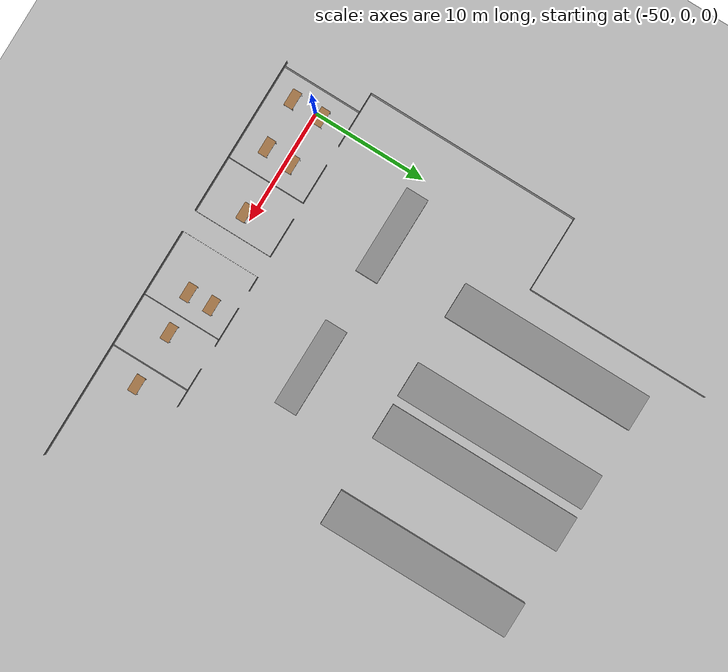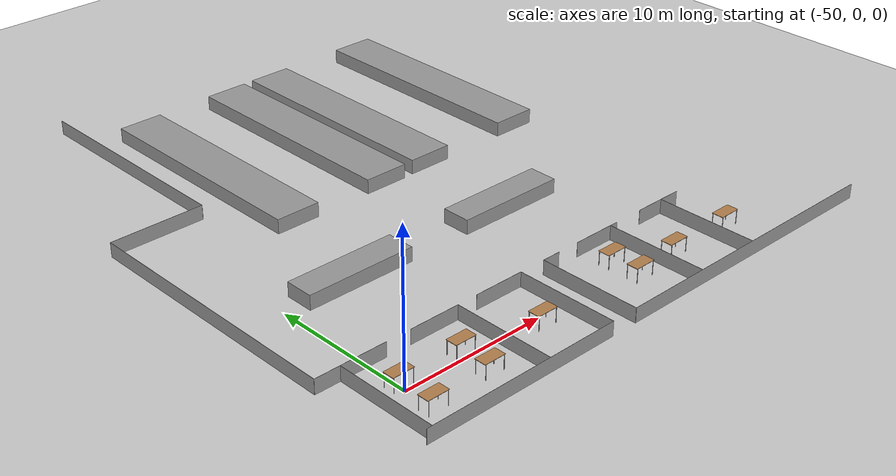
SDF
<sdf version="1.6">
 <world name="default">
  <model name="ground_plane">
   <static>1</static>
   <link name="link">
    <collision name="collision">
     <geometry><plane><normal>0 0 1</normal><size>100 100</size></plane></geometry>
     <surface>
      <contact><collide_bitmask>65535</collide_bitmask></contact>
      <friction><ode><mu>100</mu><mu2>50</mu2></ode></friction>
     </surface>
    </collision>
    <visual name="visual">
     <cast_shadows>0</cast_shadows>
     <geometry><plane><normal>0 0 1</normal><size>100 100</size></plane></geometry>
     <material>
      <script><uri>file://media/materials/scripts/gazebo.material</uri><name>Gazebo/Grey</name></script>
     </material>
    </visual>
   </link>
  </model>
  <model name="unit_box_clone_clone_clone_0_clone">
   <static>1</static>
   <pose>-51.129 2.94542 0.5 0 -0 0</pose>
   <link name="link">
    <inertial>
     <mass>1</mass>
     <inertia>
      <ixx>0.166667</ixx>
      <ixy>0</ixy>
      <ixz>0</ixz>
      <iyy>0.166667</iyy>
      <iyz>0</iyz>
      <izz>0.166667</izz>
     </inertia>
    </inertial>
    <collision name="collision"><geometry><box><size>4.94814 0.014042 1</size></box></geometry></collision>
    <visual name="visual">
     <geometry><box><size>4.94814 0.014042 1</size></box></geometry>
     <material>
      <script><name>Gazebo/Grey</name><uri>file://media/materials/scripts/gazebo.material</uri></script>
     </material>
    </visual>
   </link>
  </model>
  <model name="unit_box_0_clone_clone_clone">
   <static>1</static>
   <pose>-47.014 29.9266 0.5 0 -0 0</pose>
   <link name="link">
    <inertial>
     <mass>1</mass>
     <inertia>
      <ixx>0.166667</ixx>
      <ixy>0</ixy>
      <ixz>0</ixz>
      <iyy>0.166667</iyy>
      <iyz>0</iyz>
      <izz>0.166667</izz>
     </inertia>
    </inertial>
    <collision name="collision"><geometry><box><size>0.015785 16.224 1</size></box></geometry></collision>
    <visual name="visual">
     <geometry><box><size>0.015785 16.224 1</size></box></geometry>
     <material>
      <script><name>Gazebo/Grey</name><uri>file://media/materials/scripts/gazebo.material</uri></script>
     </material>
    </visual>
   </link>
  </model>
  <model name="unit_box_0_clone_clone_clone_clone">
   <static>1</static>
   <pose>-53.5916 12.387 0.5 0 -0 0</pose>
   <link name="link">
    <inertial>
     <mass>1</mass>
     <inertia>
      <ixx>0.166667</ixx>
      <ixy>0</ixy>
      <ixz>0</ixz>
      <iyy>0.166667</iyy>
      <iyz>0</iyz>
      <izz>0.166667</izz>
     </inertia>
    </inertial>
    <collision name="collision"><geometry><box><size>0.015785 18.88461 1</size></box></geometry></collision>
    <visual name="visual">
     <geometry><box><size>0.015785 18.88461 1</size></box></geometry>
     <material>
      <script><name>Gazebo/Grey</name><uri>file://media/materials/scripts/gazebo.material</uri></script>
     </material>
    </visual>
   </link>
  </model>
  <model name="unit_box_clone_clone_clone_1">
   <static>1</static>
   <pose>-50.306 21.822 0.5 0 -0 0</pose>
   <link name="link">
    <inertial>
     <mass>1</mass>
     <inertia>
      <ixx>0.166667</ixx>
      <ixy>0</ixy>
      <ixz>0</ixz>
      <iyy>0.166667</iyy>
      <iyz>0</iyz>
      <izz>0.166667</izz>
     </inertia>
    </inertial>
    <collision name="collision"><geometry><box><size>6.5711 0.014042 1</size></box></geometry></collision>
    <visual name="visual">
     <geometry><box><size>6.5711 0.014042 1</size></box></geometry>
     <material>
      <script><name>Gazebo/Grey</name><uri>file://media/materials/scripts/gazebo.material</uri></script>
     </material>
    </visual>
   </link>
  </model>
  <model name="unit_box_clone_clone_clone_2_clone_0_clone">
   <static>1</static>
   <pose>-26.1024 -4.02473 0.5 0 -0 0</pose>
   <link name="link">
    <inertial>
     <mass>1</mass>
     <inertia>
      <ixx>0.166667</ixx>
      <ixy>0</ixy>
      <ixz>0</ixz>
      <iyy>0.166667</iyy>
      <iyz>0</iyz>
      <izz>0.166667</izz>
     </inertia>
    </inertial>
    <collision name="collision"><geometry><box><size>20.80304 0.014042 1</size></box></geometry></collision>
    <visual name="visual">
     <geometry><box><size>20.80304 0.014042 1</size></box></geometry>
     <material>
      <script><name>Gazebo/Grey</name><uri>file://media/materials/scripts/gazebo.material</uri></script>
     </material>
    </visual>
   </link>
  </model>
  <model name="unit_box_0_clone_clone_clone_0_clone_clone_clone_clone_clone">
   <static>1</static>
   <pose>-25.9646 -0.540087 0.5 0 -0 0</pose>
   <link name="link">
    <inertial>
     <mass>1</mass>
     <inertia>
      <ixx>0.166667</ixx>
      <ixy>0</ixy>
      <ixz>0</ixz>
      <iyy>0.166667</iyy>
      <iyz>0</iyz>
      <izz>0.166667</izz>
     </inertia>
    </inertial>
    <collision name="collision"><geometry><box><size>0.015785 6.97044 1</size></box></geometry></collision>
    <visual name="visual">
     <geometry><box><size>0.015785 6.97044 1</size></box></geometry>
     <material>
      <script><name>Gazebo/Grey</name><uri>file://media/materials/scripts/gazebo.material</uri></script>
     </material>
    </visual>
   </link>
  </model>
  <model name="unit_box_0_clone_clone_clone_0_clone_clone_clone_clone_clone_0">
   <static>1</static>
   <pose>-30.6799 -0.541659 0.5 0 -0 0</pose>
   <link name="link">
    <inertial>
     <mass>1</mass>
     <inertia>
      <ixx>0.166667</ixx>
      <ixy>0</ixy>
      <ixz>0</ixz>
      <iyy>0.166667</iyy>
      <iyz>0</iyz>
      <izz>0.166667</izz>
     </inertia>
    </inertial>
    <collision name="collision"><geometry><box><size>0.015785 6.97044 1</size></box></geometry></collision>
    <visual name="visual">
     <geometry><box><size>0.015785 6.97044 1</size></box></geometry>
     <material>
      <script><name>Gazebo/Grey</name><uri>file://media/materials/scripts/gazebo.material</uri></script>
     </material>
    </visual>
   </link>
  </model>
  <model name="unit_box_0_clone_clone_clone_0_clone_clone_clone_clone_clone_1">
   <static>1</static>
   <pose>-36.5132 -0.538933 0.5 0 -0 0</pose>
   <link name="link">
    <inertial>
     <mass>1</mass>
     <inertia>
      <ixx>0.166667</ixx>
      <ixy>0</ixy>
      <ixz>0</ixz>
      <iyy>0.166667</iyy>
      <iyz>0</iyz>
      <izz>0.166667</izz>
     </inertia>
    </inertial>
    <collision name="collision"><geometry><box><size>0.015785 6.97044 1</size></box></geometry></collision>
    <visual name="visual">
     <geometry><box><size>0.015785 6.97044 1</size></box></geometry>
     <material>
      <script><name>Gazebo/Grey</name><uri>file://media/materials/scripts/gazebo.material</uri></script>
     </material>
    </visual>
   </link>
  </model>
  <model name="unit_box_0_clone_clone_clone_0_clone_clone_clone_clone_clone_2">
   <static>1</static>
   <pose>-38.3997 -0.538553 0.5 0 -0 0</pose>
   <link name="link">
    <inertial>
     <mass>1</mass>
     <inertia>
      <ixx>0.166667</ixx>
      <ixy>0</ixy>
      <ixz>0</ixz>
      <iyy>0.166667</iyy>
      <iyz>0</iyz>
      <izz>0.166667</izz>
     </inertia>
    </inertial>
    <collision name="collision"><geometry><box><size>0.015785 6.97044 1</size></box></geometry></collision>
    <visual name="visual">
     <geometry><box><size>0.015785 6.97044 1</size></box></geometry>
     <material>
      <script><name>Gazebo/Grey</name><uri>file://media/materials/scripts/gazebo.material</uri></script>
     </material>
    </visual>
   </link>
  </model>
  <model name="unit_box_0_clone_clone_clone_0_clone_clone_clone_clone_clone_3">
   <static>1</static>
   <pose>-43.3905 -0.547337 0.5 0 -0 0</pose>
   <link name="link">
    <inertial>
     <mass>1</mass>
     <inertia>
      <ixx>0.166667</ixx>
      <ixy>0</ixy>
      <ixz>0</ixz>
      <iyy>0.166667</iyy>
      <iyz>0</iyz>
      <izz>0.166667</izz>
     </inertia>
    </inertial>
    <collision name="collision"><geometry><box><size>0.015785 6.97044 1</size></box></geometry></collision>
    <visual name="visual">
     <geometry><box><size>0.015785 6.97044 1</size></box></geometry>
     <material>
      <script><name>Gazebo/Grey</name><uri>file://media/materials/scripts/gazebo.material</uri></script>
     </material>
    </visual>
   </link>
  </model>
  <model name="unit_box_0_clone_clone_clone_0_clone_clone_clone_clone_clone_4">
   <static>1</static>
   <pose>-51.8457 -0.537058 0.5 0 -0 0</pose>
   <link name="link">
    <inertial>
     <mass>1</mass>
     <inertia>
      <ixx>0.166667</ixx>
      <ixy>0</ixy>
      <ixz>0</ixz>
      <iyy>0.166667</iyy>
      <iyz>0</iyz>
      <izz>0.166667</izz>
     </inertia>
    </inertial>
    <collision name="collision"><geometry><box><size>0.015785 6.97044 1</size></box></geometry></collision>
    <visual name="visual">
     <geometry><box><size>0.015785 6.97044 1</size></box></geometry>
     <material>
      <script><name>Gazebo/Grey</name><uri>file://media/materials/scripts/gazebo.material</uri></script>
     </material>
    </visual>
   </link>
  </model>
  <model name="unit_box_clone_clone_clone_2_clone_0_clone_clone">
   <static>1</static>
   <pose>-45.3119 -4.0293 0.5 0 -0 0</pose>
   <link name="link">
    <inertial>
     <mass>1</mass>
     <inertia>
      <ixx>0.166667</ixx>
      <ixy>0</ixy>
      <ixz>0</ixz>
      <iyy>0.166667</iyy>
      <iyz>0</iyz>
      <izz>0.166667</izz>
     </inertia>
    </inertial>
    <collision name="collision"><geometry><box><size>13.83201 0.014042 1</size></box></geometry></collision>
    <visual name="visual">
     <geometry><box><size>13.83201 0.014042 1</size></box></geometry>
     <material>
      <script><name>Gazebo/Grey</name><uri>file://media/materials/scripts/gazebo.material</uri></script>
     </material>
    </visual>
   </link>
  </model>
  <model name="unit_box_clone_clone_0_clone_clone">
   <static>1</static>
   <pose>-26.2178 2.94166 0.5 0 -0 0</pose>
   <link name="link">
    <inertial>
     <mass>1</mass>
     <inertia>
      <ixx>0.166667</ixx>
      <ixy>0</ixy>
      <ixz>0</ixz>
      <iyy>0.166667</iyy>
      <iyz>0</iyz>
      <izz>0.166667</izz>
     </inertia>
    </inertial>
    <collision name="collision"><geometry><box><size>3.5462 0.014042 1</size></box></geometry></collision>
    <visual name="visual">
     <geometry><box><size>3.5462 0.014042 1</size></box></geometry>
     <material>
      <script><name>Gazebo/Grey</name><uri>file://media/materials/scripts/gazebo.material</uri></script>
     </material>
    </visual>
   </link>
  </model>
  <model name="unit_box_clone_clone_0_clone_clone_clone">
   <static>1</static>
   <pose>-31.86 2.94203 0.5 0 -0 0</pose>
   <link name="link">
    <inertial>
     <mass>1</mass>
     <inertia>
      <ixx>0.166667</ixx>
      <ixy>0</ixy>
      <ixz>0</ixz>
      <iyy>0.166667</iyy>
      <iyz>0</iyz>
      <izz>0.166667</izz>
     </inertia>
    </inertial>
    <collision name="collision"><geometry><box><size>3.5462 0.014042 1</size></box></geometry></collision>
    <visual name="visual">
     <geometry><box><size>3.5462 0.014042 1</size></box></geometry>
     <material>
      <script><name>Gazebo/Grey</name><uri>file://media/materials/scripts/gazebo.material</uri></script>
     </material>
    </visual>
   </link>
  </model>
  <model name="unit_box_clone_clone_0_clone_clone_clone_0">
   <static>1</static>
   <pose>-35.8629 2.94591 0.5 0 -0 0</pose>
   <link name="link">
    <inertial>
     <mass>1</mass>
     <inertia>
      <ixx>0.166667</ixx>
      <ixy>0</ixy>
      <ixz>0</ixz>
      <iyy>0.166667</iyy>
      <iyz>0</iyz>
      <izz>0.166667</izz>
     </inertia>
    </inertial>
    <collision name="collision"><geometry><box><size>1.292 0.014042 1</size></box></geometry></collision>
    <visual name="visual">
     <geometry><box><size>1.292 0.014042 1</size></box></geometry>
     <material>
      <script><name>Gazebo/Grey</name><uri>file://media/materials/scripts/gazebo.material</uri></script>
     </material>
    </visual>
   </link>
  </model>
  <model name="unit_box_clone_clone_0_clone_clone_clone_1">
   <static>1</static>
   <pose>-40.1671 2.94153 0.5 0 -0 0</pose>
   <link name="link">
    <inertial>
     <mass>1</mass>
     <inertia>
      <ixx>0.166667</ixx>
      <ixy>0</ixy>
      <ixz>0</ixz>
      <iyy>0.166667</iyy>
      <iyz>0</iyz>
      <izz>0.166667</izz>
     </inertia>
    </inertial>
    <collision name="collision"><geometry><box><size>3.5462 0.014042 1</size></box></geometry></collision>
    <visual name="visual">
     <geometry><box><size>3.5462 0.014042 1</size></box></geometry>
     <material>
      <script><name>Gazebo/Grey</name><uri>file://media/materials/scripts/gazebo.material</uri></script>
     </material>
    </visual>
   </link>
  </model>
  <model name="unit_box_clone_clone_0_clone_clone_clone_2">
   <static>1</static>
   <pose>-45.1647 2.9297 0.5 0 -0 0</pose>
   <link name="link">
    <inertial>
     <mass>1</mass>
     <inertia>
      <ixx>0.166667</ixx>
      <ixy>0</ixy>
      <ixz>0</ixz>
      <iyy>0.166667</iyy>
      <iyz>0</iyz>
      <izz>0.166667</izz>
     </inertia>
    </inertial>
    <collision name="collision"><geometry><box><size>3.5462 0.014042 1</size></box></geometry></collision>
    <visual name="visual">
     <geometry><box><size>3.5462 0.014042 1</size></box></geometry>
     <material>
      <script><name>Gazebo/Grey</name><uri>file://media/materials/scripts/gazebo.material</uri></script>
     </material>
    </visual>
   </link>
  </model>
  <model name="table_clone_36">
   <static>1</static>
   <link name="link">
    <collision name="surface">
     <pose>0 0 1 0 -0 0</pose>
     <geometry><box><size>1.5 0.8 0.03</size></box></geometry>
     <surface><friction><ode><mu>0.6</mu><mu2>0.6</mu2></ode></friction></surface>
    </collision>
    <visual name="visual1">
     <pose>0 0 1 0 -0 0</pose>
     <geometry><box><size>1.5 0.8 0.03</size></box></geometry>
     <material>
      <script><uri>file://media/materials/scripts/gazebo.material</uri><name>Gazebo/Wood</name></script>
     </material>
    </visual>
    <collision name="front_left_leg">
     <pose>0.68 0.38 0.5 0 -0 0</pose>
     <geometry><cylinder><radius>0.02</radius><length>1</length></cylinder></geometry>
    </collision>
    <visual name="front_left_leg">
     <pose>0.68 0.38 0.5 0 -0 0</pose>
     <geometry><cylinder><radius>0.02</radius><length>1</length></cylinder></geometry>
     <material>
      <script><uri>file://media/materials/scripts/gazebo.material</uri><name>Gazebo/Grey</name></script>
     </material>
    </visual>
    <collision name="front_right_leg">
     <pose>0.68 -0.38 0.5 0 -0 0</pose>
     <geometry><cylinder><radius>0.02</radius><length>1</length></cylinder></geometry>
    </collision>
    <visual name="front_right_leg">
     <pose>0.68 -0.38 0.5 0 -0 0</pose>
     <geometry><cylinder><radius>0.02</radius><length>1</length></cylinder></geometry>
     <material>
      <script><uri>file://media/materials/scripts/gazebo.material</uri><name>Gazebo/Grey</name></script>
     </material>
    </visual>
    <collision name="back_right_leg">
     <pose>-0.68 -0.38 0.5 0 -0 0</pose>
     <geometry><cylinder><radius>0.02</radius><length>1</length></cylinder></geometry>
    </collision>
    <visual name="back_right_leg">
     <pose>-0.68 -0.38 0.5 0 -0 0</pose>
     <geometry><cylinder><radius>0.02</radius><length>1</length></cylinder></geometry>
     <material>
      <script><uri>file://media/materials/scripts/gazebo.material</uri><name>Gazebo/Grey</name></script>
     </material>
    </visual>
    <collision name="back_left_leg">
     <pose>-0.68 0.38 0.5 0 -0 0</pose>
     <geometry><cylinder><radius>0.02</radius><length>1</length></cylinder></geometry>
    </collision>
    <visual name="back_left_leg">
     <pose>-0.68 0.38 0.5 0 -0 0</pose>
     <geometry><cylinder><radius>0.02</radius><length>1</length></cylinder></geometry>
     <material>
      <script><uri>file://media/materials/scripts/gazebo.material</uri><name>Gazebo/Grey</name></script>
     </material>
    </visual>
   </link>
   <pose>-24.3008 -0.715432 0 0 -0 0</pose>
  </model>
  <model name="table_clone_37">
   <static>1</static>
   <link name="link">
    <collision name="surface">
     <pose>0 0 1 0 -0 0</pose>
     <geometry><box><size>1.5 0.8 0.03</size></box></geometry>
     <surface><friction><ode><mu>0.6</mu><mu2>0.6</mu2></ode></friction></surface>
    </collision>
    <visual name="visual1">
     <pose>0 0 1 0 -0 0</pose>
     <geometry><box><size>1.5 0.8 0.03</size></box></geometry>
     <material>
      <script><uri>file://media/materials/scripts/gazebo.material</uri><name>Gazebo/Wood</name></script>
     </material>
    </visual>
    <collision name="front_left_leg">
     <pose>0.68 0.38 0.5 0 -0 0</pose>
     <geometry><cylinder><radius>0.02</radius><length>1</length></cylinder></geometry>
    </collision>
    <visual name="front_left_leg">
     <pose>0.68 0.38 0.5 0 -0 0</pose>
     <geometry><cylinder><radius>0.02</radius><length>1</length></cylinder></geometry>
     <material>
      <script><uri>file://media/materials/scripts/gazebo.material</uri><name>Gazebo/Grey</name></script>
     </material>
    </visual>
    <collision name="front_right_leg">
     <pose>0.68 -0.38 0.5 0 -0 0</pose>
     <geometry><cylinder><radius>0.02</radius><length>1</length></cylinder></geometry>
    </collision>
    <visual name="front_right_leg">
     <pose>0.68 -0.38 0.5 0 -0 0</pose>
     <geometry><cylinder><radius>0.02</radius><length>1</length></cylinder></geometry>
     <material>
      <script><uri>file://media/materials/scripts/gazebo.material</uri><name>Gazebo/Grey</name></script>
     </material>
    </visual>
    <collision name="back_right_leg">
     <pose>-0.68 -0.38 0.5 0 -0 0</pose>
     <geometry><cylinder><radius>0.02</radius><length>1</length></cylinder></geometry>
    </collision>
    <visual name="back_right_leg">
     <pose>-0.68 -0.38 0.5 0 -0 0</pose>
     <geometry><cylinder><radius>0.02</radius><length>1</length></cylinder></geometry>
     <material>
      <script><uri>file://media/materials/scripts/gazebo.material</uri><name>Gazebo/Grey</name></script>
     </material>
    </visual>
    <collision name="back_left_leg">
     <pose>-0.68 0.38 0.5 0 -0 0</pose>
     <geometry><cylinder><radius>0.02</radius><length>1</length></cylinder></geometry>
    </collision>
    <visual name="back_left_leg">
     <pose>-0.68 0.38 0.5 0 -0 0</pose>
     <geometry><cylinder><radius>0.02</radius><length>1</length></cylinder></geometry>
     <material>
      <script><uri>file://media/materials/scripts/gazebo.material</uri><name>Gazebo/Grey</name></script>
     </material>
    </visual>
   </link>
   <pose>-29.1247 -0.683947 0 0 -0 0</pose>
  </model>
  <model name="table_clone_38">
   <static>1</static>
   <link name="link">
    <collision name="surface">
     <pose>0 0 1 0 -0 0</pose>
     <geometry><box><size>1.5 0.8 0.03</size></box></geometry>
     <surface><friction><ode><mu>0.6</mu><mu2>0.6</mu2></ode></friction></surface>
    </collision>
    <visual name="visual1">
     <pose>0 0 1 0 -0 0</pose>
     <geometry><box><size>1.5 0.8 0.03</size></box></geometry>
     <material>
      <script><uri>file://media/materials/scripts/gazebo.material</uri><name>Gazebo/Wood</name></script>
     </material>
    </visual>
    <collision name="front_left_leg">
     <pose>0.68 0.38 0.5 0 -0 0</pose>
     <geometry><cylinder><radius>0.02</radius><length>1</length></cylinder></geometry>
    </collision>
    <visual name="front_left_leg">
     <pose>0.68 0.38 0.5 0 -0 0</pose>
     <geometry><cylinder><radius>0.02</radius><length>1</length></cylinder></geometry>
     <material>
      <script><uri>file://media/materials/scripts/gazebo.material</uri><name>Gazebo/Grey</name></script>
     </material>
    </visual>
    <collision name="front_right_leg">
     <pose>0.68 -0.38 0.5 0 -0 0</pose>
     <geometry><cylinder><radius>0.02</radius><length>1</length></cylinder></geometry>
    </collision>
    <visual name="front_right_leg">
     <pose>0.68 -0.38 0.5 0 -0 0</pose>
     <geometry><cylinder><radius>0.02</radius><length>1</length></cylinder></geometry>
     <material>
      <script><uri>file://media/materials/scripts/gazebo.material</uri><name>Gazebo/Grey</name></script>
     </material>
    </visual>
    <collision name="back_right_leg">
     <pose>-0.68 -0.38 0.5 0 -0 0</pose>
     <geometry><cylinder><radius>0.02</radius><length>1</length></cylinder></geometry>
    </collision>
    <visual name="back_right_leg">
     <pose>-0.68 -0.38 0.5 0 -0 0</pose>
     <geometry><cylinder><radius>0.02</radius><length>1</length></cylinder></geometry>
     <material>
      <script><uri>file://media/materials/scripts/gazebo.material</uri><name>Gazebo/Grey</name></script>
     </material>
    </visual>
    <collision name="back_left_leg">
     <pose>-0.68 0.38 0.5 0 -0 0</pose>
     <geometry><cylinder><radius>0.02</radius><length>1</length></cylinder></geometry>
    </collision>
    <visual name="back_left_leg">
     <pose>-0.68 0.38 0.5 0 -0 0</pose>
     <geometry><cylinder><radius>0.02</radius><length>1</length></cylinder></geometry>
     <material>
      <script><uri>file://media/materials/scripts/gazebo.material</uri><name>Gazebo/Grey</name></script>
     </material>
    </visual>
   </link>
   <pose>-32.6323 -1.04755 0 0 -0 0</pose>
  </model>
  <model name="table_clone_39">
   <static>1</static>
   <link name="link">
    <collision name="surface">
     <pose>0 0 1 0 -0 0</pose>
     <geometry><box><size>1.5 0.8 0.03</size></box></geometry>
     <surface><friction><ode><mu>0.6</mu><mu2>0.6</mu2></ode></friction></surface>
    </collision>
    <visual name="visual1">
     <pose>0 0 1 0 -0 0</pose>
     <geometry><box><size>1.5 0.8 0.03</size></box></geometry>
     <material>
      <script><uri>file://media/materials/scripts/gazebo.material</uri><name>Gazebo/Wood</name></script>
     </material>
    </visual>
    <collision name="front_left_leg">
     <pose>0.68 0.38 0.5 0 -0 0</pose>
     <geometry><cylinder><radius>0.02</radius><length>1</length></cylinder></geometry>
    </collision>
    <visual name="front_left_leg">
     <pose>0.68 0.38 0.5 0 -0 0</pose>
     <geometry><cylinder><radius>0.02</radius><length>1</length></cylinder></geometry>
     <material>
      <script><uri>file://media/materials/scripts/gazebo.material</uri><name>Gazebo/Grey</name></script>
     </material>
    </visual>
    <collision name="front_right_leg">
     <pose>0.68 -0.38 0.5 0 -0 0</pose>
     <geometry><cylinder><radius>0.02</radius><length>1</length></cylinder></geometry>
    </collision>
    <visual name="front_right_leg">
     <pose>0.68 -0.38 0.5 0 -0 0</pose>
     <geometry><cylinder><radius>0.02</radius><length>1</length></cylinder></geometry>
     <material>
      <script><uri>file://media/materials/scripts/gazebo.material</uri><name>Gazebo/Grey</name></script>
     </material>
    </visual>
    <collision name="back_right_leg">
     <pose>-0.68 -0.38 0.5 0 -0 0</pose>
     <geometry><cylinder><radius>0.02</radius><length>1</length></cylinder></geometry>
    </collision>
    <visual name="back_right_leg">
     <pose>-0.68 -0.38 0.5 0 -0 0</pose>
     <geometry><cylinder><radius>0.02</radius><length>1</length></cylinder></geometry>
     <material>
      <script><uri>file://media/materials/scripts/gazebo.material</uri><name>Gazebo/Grey</name></script>
     </material>
    </visual>
    <collision name="back_left_leg">
     <pose>-0.68 0.38 0.5 0 -0 0</pose>
     <geometry><cylinder><radius>0.02</radius><length>1</length></cylinder></geometry>
    </collision>
    <visual name="back_left_leg">
     <pose>-0.68 0.38 0.5 0 -0 0</pose>
     <geometry><cylinder><radius>0.02</radius><length>1</length></cylinder></geometry>
     <material>
      <script><uri>file://media/materials/scripts/gazebo.material</uri><name>Gazebo/Grey</name></script>
     </material>
    </visual>
   </link>
   <pose>-32.6993 1.04354 0 0 -0 0</pose>
  </model>
  <model name="table_clone_40">
   <static>1</static>
   <link name="link">
    <collision name="surface">
     <pose>0 0 1 0 -0 0</pose>
     <geometry><box><size>1.5 0.8 0.03</size></box></geometry>
     <surface><friction><ode><mu>0.6</mu><mu2>0.6</mu2></ode></friction></surface>
    </collision>
    <visual name="visual1">
     <pose>0 0 1 0 -0 0</pose>
     <geometry><box><size>1.5 0.8 0.03</size></box></geometry>
     <material>
      <script><uri>file://media/materials/scripts/gazebo.material</uri><name>Gazebo/Wood</name></script>
     </material>
    </visual>
    <collision name="front_left_leg">
     <pose>0.68 0.38 0.5 0 -0 0</pose>
     <geometry><cylinder><radius>0.02</radius><length>1</length></cylinder></geometry>
    </collision>
    <visual name="front_left_leg">
     <pose>0.68 0.38 0.5 0 -0 0</pose>
     <geometry><cylinder><radius>0.02</radius><length>1</length></cylinder></geometry>
     <material>
      <script><uri>file://media/materials/scripts/gazebo.material</uri><name>Gazebo/Grey</name></script>
     </material>
    </visual>
    <collision name="front_right_leg">
     <pose>0.68 -0.38 0.5 0 -0 0</pose>
     <geometry><cylinder><radius>0.02</radius><length>1</length></cylinder></geometry>
    </collision>
    <visual name="front_right_leg">
     <pose>0.68 -0.38 0.5 0 -0 0</pose>
     <geometry><cylinder><radius>0.02</radius><length>1</length></cylinder></geometry>
     <material>
      <script><uri>file://media/materials/scripts/gazebo.material</uri><name>Gazebo/Grey</name></script>
     </material>
    </visual>
    <collision name="back_right_leg">
     <pose>-0.68 -0.38 0.5 0 -0 0</pose>
     <geometry><cylinder><radius>0.02</radius><length>1</length></cylinder></geometry>
    </collision>
    <visual name="back_right_leg">
     <pose>-0.68 -0.38 0.5 0 -0 0</pose>
     <geometry><cylinder><radius>0.02</radius><length>1</length></cylinder></geometry>
     <material>
      <script><uri>file://media/materials/scripts/gazebo.material</uri><name>Gazebo/Grey</name></script>
     </material>
    </visual>
    <collision name="back_left_leg">
     <pose>-0.68 0.38 0.5 0 -0 0</pose>
     <geometry><cylinder><radius>0.02</radius><length>1</length></cylinder></geometry>
    </collision>
    <visual name="back_left_leg">
     <pose>-0.68 0.38 0.5 0 -0 0</pose>
     <geometry><cylinder><radius>0.02</radius><length>1</length></cylinder></geometry>
     <material>
      <script><uri>file://media/materials/scripts/gazebo.material</uri><name>Gazebo/Grey</name></script>
     </material>
    </visual>
   </link>
   <pose>-40.3227 -0.586006 0 0 -0 0</pose>
  </model>
  <model name="table_clone_41">
   <static>1</static>
   <link name="link">
    <collision name="surface">
     <pose>0 0 1 0 -0 0</pose>
     <geometry><box><size>1.5 0.8 0.03</size></box></geometry>
     <surface><friction><ode><mu>0.6</mu><mu2>0.6</mu2></ode></friction></surface>
    </collision>
    <visual name="visual1">
     <pose>0 0 1 0 -0 0</pose>
     <geometry><box><size>1.5 0.8 0.03</size></box></geometry>
     <material>
      <script><uri>file://media/materials/scripts/gazebo.material</uri><name>Gazebo/Wood</name></script>
     </material>
    </visual>
    <collision name="front_left_leg">
     <pose>0.68 0.38 0.5 0 -0 0</pose>
     <geometry><cylinder><radius>0.02</radius><length>1</length></cylinder></geometry>
    </collision>
    <visual name="front_left_leg">
     <pose>0.68 0.38 0.5 0 -0 0</pose>
     <geometry><cylinder><radius>0.02</radius><length>1</length></cylinder></geometry>
     <material>
      <script><uri>file://media/materials/scripts/gazebo.material</uri><name>Gazebo/Grey</name></script>
     </material>
    </visual>
    <collision name="front_right_leg">
     <pose>0.68 -0.38 0.5 0 -0 0</pose>
     <geometry><cylinder><radius>0.02</radius><length>1</length></cylinder></geometry>
    </collision>
    <visual name="front_right_leg">
     <pose>0.68 -0.38 0.5 0 -0 0</pose>
     <geometry><cylinder><radius>0.02</radius><length>1</length></cylinder></geometry>
     <material>
      <script><uri>file://media/materials/scripts/gazebo.material</uri><name>Gazebo/Grey</name></script>
     </material>
    </visual>
    <collision name="back_right_leg">
     <pose>-0.68 -0.38 0.5 0 -0 0</pose>
     <geometry><cylinder><radius>0.02</radius><length>1</length></cylinder></geometry>
    </collision>
    <visual name="back_right_leg">
     <pose>-0.68 -0.38 0.5 0 -0 0</pose>
     <geometry><cylinder><radius>0.02</radius><length>1</length></cylinder></geometry>
     <material>
      <script><uri>file://media/materials/scripts/gazebo.material</uri><name>Gazebo/Grey</name></script>
     </material>
    </visual>
    <collision name="back_left_leg">
     <pose>-0.68 0.38 0.5 0 -0 0</pose>
     <geometry><cylinder><radius>0.02</radius><length>1</length></cylinder></geometry>
    </collision>
    <visual name="back_left_leg">
     <pose>-0.68 0.38 0.5 0 -0 0</pose>
     <geometry><cylinder><radius>0.02</radius><length>1</length></cylinder></geometry>
     <material>
      <script><uri>file://media/materials/scripts/gazebo.material</uri><name>Gazebo/Grey</name></script>
     </material>
    </visual>
   </link>
   <pose>-49.8839 0.598812 0 0 -0 0</pose>
  </model>
  <model name="table_clone_42">
   <static>1</static>
   <link name="link">
    <collision name="surface">
     <pose>0 0 1 0 -0 0</pose>
     <geometry><box><size>1.5 0.8 0.03</size></box></geometry>
     <surface><friction><ode><mu>0.6</mu><mu2>0.6</mu2></ode></friction></surface>
    </collision>
    <visual name="visual1">
     <pose>0 0 1 0 -0 0</pose>
     <geometry><box><size>1.5 0.8 0.03</size></box></geometry>
     <material>
      <script><uri>file://media/materials/scripts/gazebo.material</uri><name>Gazebo/Wood</name></script>
     </material>
    </visual>
    <collision name="front_left_leg">
     <pose>0.68 0.38 0.5 0 -0 0</pose>
     <geometry><cylinder><radius>0.02</radius><length>1</length></cylinder></geometry>
    </collision>
    <visual name="front_left_leg">
     <pose>0.68 0.38 0.5 0 -0 0</pose>
     <geometry><cylinder><radius>0.02</radius><length>1</length></cylinder></geometry>
     <material>
      <script><uri>file://media/materials/scripts/gazebo.material</uri><name>Gazebo/Grey</name></script>
     </material>
    </visual>
    <collision name="front_right_leg">
     <pose>0.68 -0.38 0.5 0 -0 0</pose>
     <geometry><cylinder><radius>0.02</radius><length>1</length></cylinder></geometry>
    </collision>
    <visual name="front_right_leg">
     <pose>0.68 -0.38 0.5 0 -0 0</pose>
     <geometry><cylinder><radius>0.02</radius><length>1</length></cylinder></geometry>
     <material>
      <script><uri>file://media/materials/scripts/gazebo.material</uri><name>Gazebo/Grey</name></script>
     </material>
    </visual>
    <collision name="back_right_leg">
     <pose>-0.68 -0.38 0.5 0 -0 0</pose>
     <geometry><cylinder><radius>0.02</radius><length>1</length></cylinder></geometry>
    </collision>
    <visual name="back_right_leg">
     <pose>-0.68 -0.38 0.5 0 -0 0</pose>
     <geometry><cylinder><radius>0.02</radius><length>1</length></cylinder></geometry>
     <material>
      <script><uri>file://media/materials/scripts/gazebo.material</uri><name>Gazebo/Grey</name></script>
     </material>
    </visual>
    <collision name="back_left_leg">
     <pose>-0.68 0.38 0.5 0 -0 0</pose>
     <geometry><cylinder><radius>0.02</radius><length>1</length></cylinder></geometry>
    </collision>
    <visual name="back_left_leg">
     <pose>-0.68 0.38 0.5 0 -0 0</pose>
     <geometry><cylinder><radius>0.02</radius><length>1</length></cylinder></geometry>
     <material>
      <script><uri>file://media/materials/scripts/gazebo.material</uri><name>Gazebo/Grey</name></script>
     </material>
    </visual>
   </link>
   <pose>-49.9203 -2.05335 0 0 -0 0</pose>
  </model>
  <model name="table_clone_43">
   <static>1</static>
   <link name="link">
    <collision name="surface">
     <pose>0 0 1 0 -0 0</pose>
     <geometry><box><size>1.5 0.8 0.03</size></box></geometry>
     <surface><friction><ode><mu>0.6</mu><mu2>0.6</mu2></ode></friction></surface>
    </collision>
    <visual name="visual1">
     <pose>0 0 1 0 -0 0</pose>
     <geometry><box><size>1.5 0.8 0.03</size></box></geometry>
     <material>
      <script><uri>file://media/materials/scripts/gazebo.material</uri><name>Gazebo/Wood</name></script>
     </material>
    </visual>
    <collision name="front_left_leg">
     <pose>0.68 0.38 0.5 0 -0 0</pose>
     <geometry><cylinder><radius>0.02</radius><length>1</length></cylinder></geometry>
    </collision>
    <visual name="front_left_leg">
     <pose>0.68 0.38 0.5 0 -0 0</pose>
     <geometry><cylinder><radius>0.02</radius><length>1</length></cylinder></geometry>
     <material>
      <script><uri>file://media/materials/scripts/gazebo.material</uri><name>Gazebo/Grey</name></script>
     </material>
    </visual>
    <collision name="front_right_leg">
     <pose>0.68 -0.38 0.5 0 -0 0</pose>
     <geometry><cylinder><radius>0.02</radius><length>1</length></cylinder></geometry>
    </collision>
    <visual name="front_right_leg">
     <pose>0.68 -0.38 0.5 0 -0 0</pose>
     <geometry><cylinder><radius>0.02</radius><length>1</length></cylinder></geometry>
     <material>
      <script><uri>file://media/materials/scripts/gazebo.material</uri><name>Gazebo/Grey</name></script>
     </material>
    </visual>
    <collision name="back_right_leg">
     <pose>-0.68 -0.38 0.5 0 -0 0</pose>
     <geometry><cylinder><radius>0.02</radius><length>1</length></cylinder></geometry>
    </collision>
    <visual name="back_right_leg">
     <pose>-0.68 -0.38 0.5 0 -0 0</pose>
     <geometry><cylinder><radius>0.02</radius><length>1</length></cylinder></geometry>
     <material>
      <script><uri>file://media/materials/scripts/gazebo.material</uri><name>Gazebo/Grey</name></script>
     </material>
    </visual>
    <collision name="back_left_leg">
     <pose>-0.68 0.38 0.5 0 -0 0</pose>
     <geometry><cylinder><radius>0.02</radius><length>1</length></cylinder></geometry>
    </collision>
    <visual name="back_left_leg">
     <pose>-0.68 0.38 0.5 0 -0 0</pose>
     <geometry><cylinder><radius>0.02</radius><length>1</length></cylinder></geometry>
     <material>
      <script><uri>file://media/materials/scripts/gazebo.material</uri><name>Gazebo/Grey</name></script>
     </material>
    </visual>
   </link>
   <pose>-45.4878 0.512699 0 0 -0 0</pose>
  </model>
  <model name="table_clone_44">
   <static>1</static>
   <link name="link">
    <collision name="surface">
     <pose>0 0 1 0 -0 0</pose>
     <geometry><box><size>1.5 0.8 0.03</size></box></geometry>
     <surface><friction><ode><mu>0.6</mu><mu2>0.6</mu2></ode></friction></surface>
    </collision>
    <visual name="visual1">
     <pose>0 0 1 0 -0 0</pose>
     <geometry><box><size>1.5 0.8 0.03</size></box></geometry>
     <material>
      <script><uri>file://media/materials/scripts/gazebo.material</uri><name>Gazebo/Wood</name></script>
     </material>
    </visual>
    <collision name="front_left_leg">
     <pose>0.68 0.38 0.5 0 -0 0</pose>
     <geometry><cylinder><radius>0.02</radius><length>1</length></cylinder></geometry>
    </collision>
    <visual name="front_left_leg">
     <pose>0.68 0.38 0.5 0 -0 0</pose>
     <geometry><cylinder><radius>0.02</radius><length>1</length></cylinder></geometry>
     <material>
      <script><uri>file://media/materials/scripts/gazebo.material</uri><name>Gazebo/Grey</name></script>
     </material>
    </visual>
    <collision name="front_right_leg">
     <pose>0.68 -0.38 0.5 0 -0 0</pose>
     <geometry><cylinder><radius>0.02</radius><length>1</length></cylinder></geometry>
    </collision>
    <visual name="front_right_leg">
     <pose>0.68 -0.38 0.5 0 -0 0</pose>
     <geometry><cylinder><radius>0.02</radius><length>1</length></cylinder></geometry>
     <material>
      <script><uri>file://media/materials/scripts/gazebo.material</uri><name>Gazebo/Grey</name></script>
     </material>
    </visual>
    <collision name="back_right_leg">
     <pose>-0.68 -0.38 0.5 0 -0 0</pose>
     <geometry><cylinder><radius>0.02</radius><length>1</length></cylinder></geometry>
    </collision>
    <visual name="back_right_leg">
     <pose>-0.68 -0.38 0.5 0 -0 0</pose>
     <geometry><cylinder><radius>0.02</radius><length>1</length></cylinder></geometry>
     <material>
      <script><uri>file://media/materials/scripts/gazebo.material</uri><name>Gazebo/Grey</name></script>
     </material>
    </visual>
    <collision name="back_left_leg">
     <pose>-0.68 0.38 0.5 0 -0 0</pose>
     <geometry><cylinder><radius>0.02</radius><length>1</length></cylinder></geometry>
    </collision>
    <visual name="back_left_leg">
     <pose>-0.68 0.38 0.5 0 -0 0</pose>
     <geometry><cylinder><radius>0.02</radius><length>1</length></cylinder></geometry>
     <material>
      <script><uri>file://media/materials/scripts/gazebo.material</uri><name>Gazebo/Grey</name></script>
     </material>
    </visual>
   </link>
   <pose>-45.6288 -1.80248 0 0 -0 0</pose>
  </model>
  <model name="unit_box_1_clone_0_clone_0">
   <static>1</static>
   <pose>-24.1216 25.9406 0.5 0 -0 0</pose>
   <link name="link">
    <inertial>
     <mass>1</mass>
     <inertia>
      <ixx>0.166667</ixx>
      <ixy>0</ixy>
      <ixz>0</ixz>
      <iyy>0.166667</iyy>
      <iyz>0</iyz>
      <izz>0.166667</izz>
     </inertia>
    </inertial>
    <collision name="collision"><geometry><box><size>3.13881 17.0566 1</size></box></geometry></collision>
    <visual name="visual">
     <geometry><box><size>3.13881 17.0566 1</size></box></geometry>
     <material>
      <script><name>Gazebo/Grey</name><uri>file://media/materials/scripts/gazebo.material</uri></script>
     </material>
    </visual>
   </link>
  </model>
  <model name="unit_box_1_clone_0_clone_1">
   <static>1</static>
   <pose>-32.0408 25.8673 0.5 0 -0 0</pose>
   <link name="link">
    <inertial>
     <mass>1</mass>
     <inertia>
      <ixx>0.166667</ixx>
      <ixy>0</ixy>
      <ixz>0</ixz>
      <iyy>0.166667</iyy>
      <iyz>0</iyz>
      <izz>0.166667</izz>
     </inertia>
    </inertial>
    <collision name="collision"><geometry><box><size>3.13881 17.0566 1</size></box></geometry></collision>
    <visual name="visual">
     <geometry><box><size>3.13881 17.0566 1</size></box></geometry>
     <material>
      <script><name>Gazebo/Grey</name><uri>file://media/materials/scripts/gazebo.material</uri></script>
     </material>
    </visual>
   </link>
  </model>
  <model name="unit_box_1_clone_0_clone_2">
   <static>1</static>
   <pose>-35.9051 25.8168 0.5 0 -0 0</pose>
   <link name="link">
    <inertial>
     <mass>1</mass>
     <inertia>
      <ixx>0.166667</ixx>
      <ixy>0</ixy>
      <ixz>0</ixz>
      <iyy>0.166667</iyy>
      <iyz>0</iyz>
      <izz>0.166667</izz>
     </inertia>
    </inertial>
    <collision name="collision"><geometry><box><size>3.13881 17.0566 1</size></box></geometry></collision>
    <visual name="visual">
     <geometry><box><size>3.13881 17.0566 1</size></box></geometry>
     <material>
      <script><name>Gazebo/Grey</name><uri>file://media/materials/scripts/gazebo.material</uri></script>
     </material>
    </visual>
   </link>
  </model>
  <model name="unit_box_1_clone_0_clone_3">
   <static>1</static>
   <pose>-43.1823 25.7132 0.5 0 -0 0</pose>
   <link name="link">
    <inertial>
     <mass>1</mass>
     <inertia>
      <ixx>0.166667</ixx>
      <ixy>0</ixy>
      <ixz>0</ixz>
      <iyy>0.166667</iyy>
      <iyz>0</iyz>
      <izz>0.166667</izz>
     </inertia>
    </inertial>
    <collision name="collision"><geometry><box><size>3.13881 17.0566 1</size></box></geometry></collision>
    <visual name="visual">
     <geometry><box><size>3.13881 17.0566 1</size></box></geometry>
     <material>
      <script><name>Gazebo/Grey</name><uri>file://media/materials/scripts/gazebo.material</uri></script>
     </material>
    </visual>
   </link>
  </model>
  <model name="unit_box_2_clone_4">
   <static>1</static>
   <pose>-32.653 10.2783 0.5 0 -0 0</pose>
   <link name="link">
    <inertial>
     <mass>1</mass>
     <inertia>
      <ixx>0.166667</ixx>
      <ixy>0</ixy>
      <ixz>0</ixz>
      <iyy>0.166667</iyy>
      <iyz>0</iyz>
      <izz>0.166667</izz>
     </inertia>
    </inertial>
    <collision name="collision"><geometry><box><size>7.69644 1.97819 1</size></box></geometry></collision>
    <visual name="visual">
     <geometry><box><size>7.69644 1.97819 1</size></box></geometry>
     <material>
      <script><name>Gazebo/Grey</name><uri>file://media/materials/scripts/gazebo.material</uri></script>
     </material>
    </visual>
   </link>
  </model>
  <model name="unit_box_2_clone_5">
   <static>1</static>
   <pose>-44.8815 10.2519 0.5 0 -0 0</pose>
   <link name="link">
    <inertial>
     <mass>1</mass>
     <inertia>
      <ixx>0.166667</ixx>
      <ixy>0</ixy>
      <ixz>0</ixz>
      <iyy>0.166667</iyy>
      <iyz>0</iyz>
      <izz>0.166667</izz>
     </inertia>
    </inertial>
    <collision name="collision"><geometry><box><size>7.69644 1.97819 1</size></box></geometry></collision>
    <visual name="visual">
     <geometry><box><size>7.69644 1.97819 1</size></box></geometry>
     <material>
      <script><name>Gazebo/Grey</name><uri>file://media/materials/scripts/gazebo.material</uri></script>
     </material>
    </visual>
   </link>
  </model>
 </world>
</sdf>
